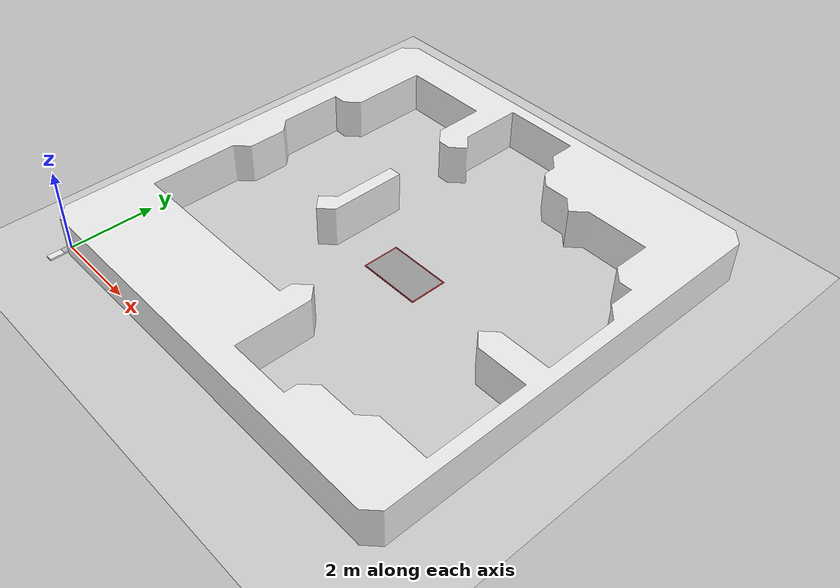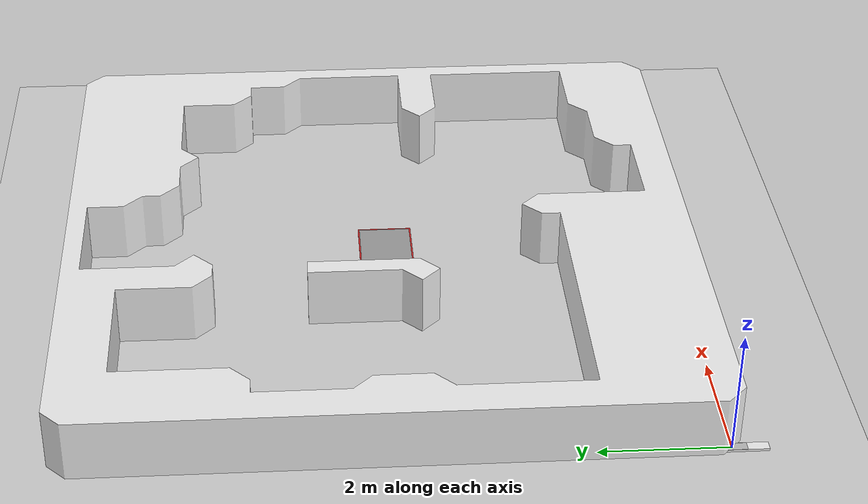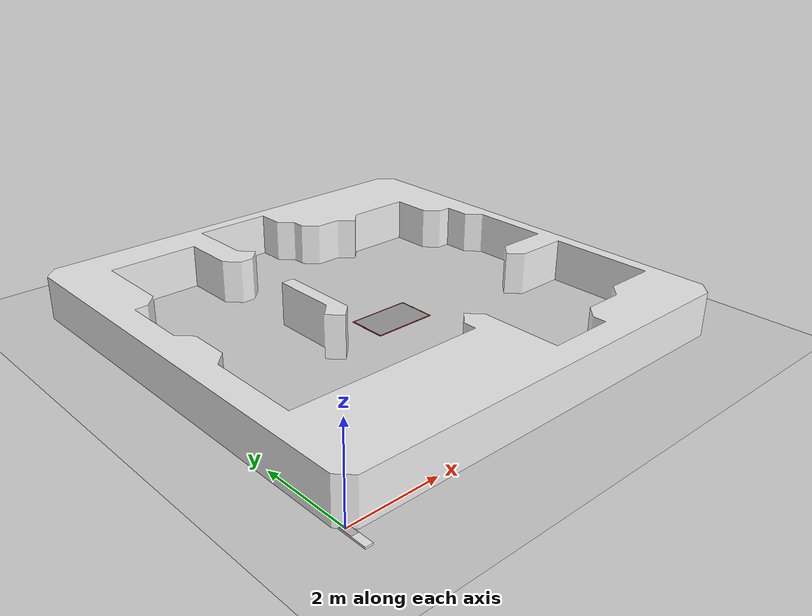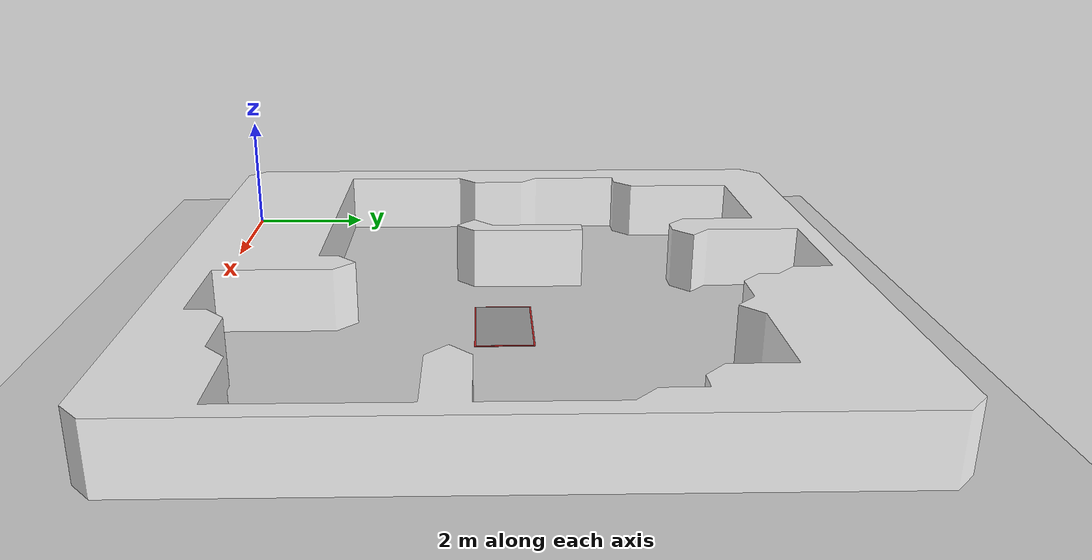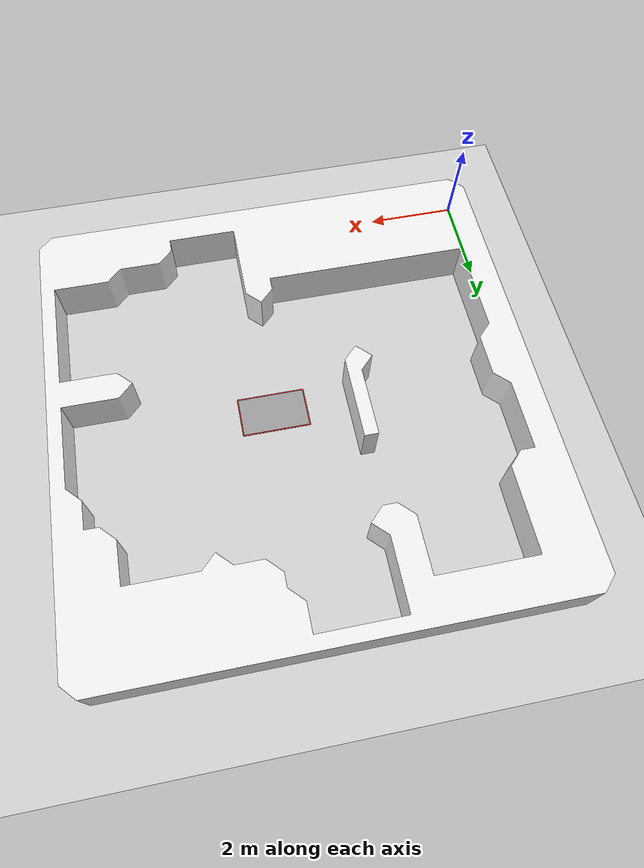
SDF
<?xml version="1.0"?>
<sdf version="1.6">
  <world name="default">

    <include>
      <uri>model://ground_plane</uri>
    </include>

    <include>
      <uri>model://sun</uri>
    </include>

    <scene>
      <shadows>false</shadows>
    </scene>

    <gui fullscreen='0'>
      <camera name='user_camera'>
        <pose frame=''>0.319654 -0.235002 9.29441 0 1.5138 0.009599</pose>
        <view_controller>orbit</view_controller>
        <projection_type>perspective</projection_type>
      </camera>
    </gui>

    <physics type="ode">
      <real_time_update_rate>1000.0</real_time_update_rate>
      <max_step_size>0.001</max_step_size>
      <real_time_factor>1</real_time_factor>
      <ode>
        <solver>
          <type>quick</type>
          <iters>150</iters>
          <precon_iters>0</precon_iters>
          <sor>1.400000</sor>
          <use_dynamic_moi_rescaling>1</use_dynamic_moi_rescaling>
        </solver>
        <constraints>
          <cfm>0.00001</cfm>
          <erp>0.2</erp>
          <contact_max_correcting_vel>2000.000000</contact_max_correcting_vel>
          <contact_surface_layer>0.01000</contact_surface_layer>
        </constraints>
      </ode>
    </physics>

    <model name="map32">
      <static>1</static>
      <include>
        <uri>/home/alessandro/vpn_project/VPN_Robotics/ros/src/cooperative_robotics/models/map32</uri>
      </include>
    </model>

    <model name="object">
      <include>
        <uri>/home/alessandro/vpn_project/VPN_Robotics/ros/src/cooperative_robotics/models/object</uri>
      </include>
    </model>

      <model name="target">
      <include>
        <uri>/home/alessandro/vpn_project/VPN_Robotics/ros/src/cooperative_robotics/models/target</uri>
      </include>
    </model>

    <plugin name="gazebo_ros_state" filename="libgazebo_ros_state.so">
      <ros>
        <namespace>/gazebo</namespace>
      </ros>

      <update_rate>1.0</update_rate>
    </plugin>

  </world>
</sdf>

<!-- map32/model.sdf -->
<sdf version="1.4">
  <model name="map32">
    <link name="link">
      <inertial>
        <mass>1</mass>
        <inertia>
          <ixx>0.0</ixx>
          <ixy>0.0</ixy>
          <ixz>0.0</ixz>
          <iyy>0.0</iyy>
          <iyz>0.0</iyz>
          <izz>0.0</izz>
        </inertia>
      </inertial>
      <collision name="collision">
        <pose>0.15 -0.15 0 0 0 1.5708</pose>
        <geometry>
          <mesh>
            <uri>/home/alessandro/vpn_project/VPN_Robotics/ros/src/cooperative_robotics/models/map32/map1.stl</uri>
          </mesh>
        </geometry>
      </collision>
      <visual name="visual">
        <pose>0.15 -0.15 0 0 0 1.5708</pose>
        <geometry>
          <mesh>
            <uri>/home/alessandro/vpn_project/VPN_Robotics/ros/src/cooperative_robotics/models/map32/map1.stl</uri>
          </mesh>
        </geometry>
        <material>
          <script>
            <uri>file://media/materials/scripts/gazebo.material</uri>
            <name>Gazebo/White</name>
          </script>
        </material>
      </visual>
    </link>
    <static>1</static>
  </model>
</sdf>

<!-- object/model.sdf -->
<sdf version="1.5">
  <model name="myobject">
    <pose>0 0 0 0 0 0</pose>
    <static>false</static>

    <link name="link">
      <gravity>0</gravity>
      <visual name="visual">
        <pose>0 0 0 0 0 0</pose>
        <geometry>
          <box>
            <size>0.16 1.1 0.05</size>
          </box>
        </geometry>
        <material>
          <script>
            <uri>file://media/materials/scripts/gazebo.material</uri>
            <name>Gazebo/White</name>
          </script>
        </material>
      </visual>
    </link>

    <link name="linklogo">
      <gravity>0</gravity>
      <visual name="visual">
        <pose>0 0 0.0205 0 0 3.1415</pose>
        <geometry>
          <box>
            <size>0.15 0.45 0.01</size>
          </box>
        </geometry>
        <material>
          <script>
            <uri>/home/alessandro/vpn_project/VPN_Robotics/ros/src/cooperative_robotics/models/object/mytexture.material</uri>
            <name>Gazebo/My</name>
          </script>
        </material>
      </visual>
    </link>
  </model>
</sdf>

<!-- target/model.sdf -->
<sdf version="1.5">
  <model name="targetarea">
    <pose>0 0 0 0 0 0</pose>
    <static>false</static>

    <link name="link">
      <gravity>0</gravity>
      <visual name="visual">
        <pose>5.4 4.8 -0.0045 0 0 0</pose>
        <geometry>
          <box>
            <size>1.5 0.9 0.01</size>
          </box>
        </geometry>
        <material>
          <script>
            <uri>file://media/materials/scripts/gazebo.material</uri>
            <name>Gazebo/Red</name>
          </script>
        </material>
      </visual>
    </link>

    <link name="link_inner">
      <gravity>0</gravity>
      <visual name="visual">
        <pose>5.4 4.8 -0.004 0 0 0</pose>
        <geometry>
          <box>
            <size>1.45 0.85 0.01</size>
          </box>
        </geometry>
        <material>
          <script>
            <uri>file://media/materials/scripts/gazebo.material</uri>
            <name>Gazebo/Gray</name>
          </script>
        </material>
      </visual>
    </link>
  </model>
</sdf>
